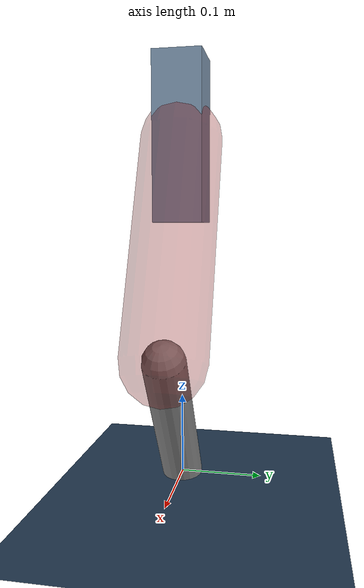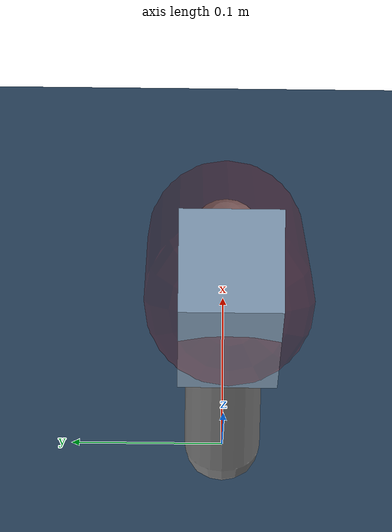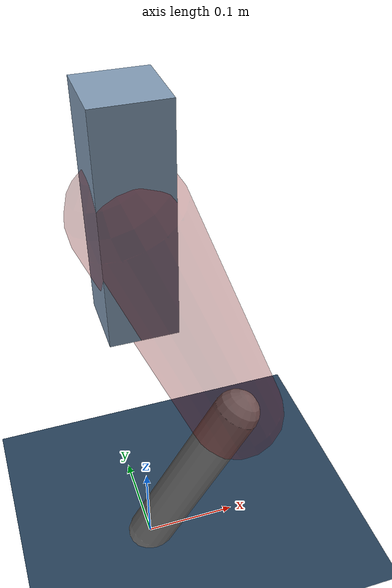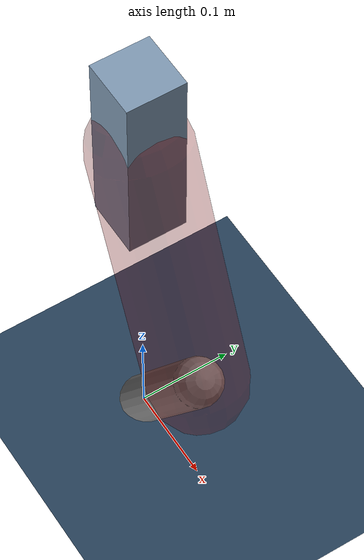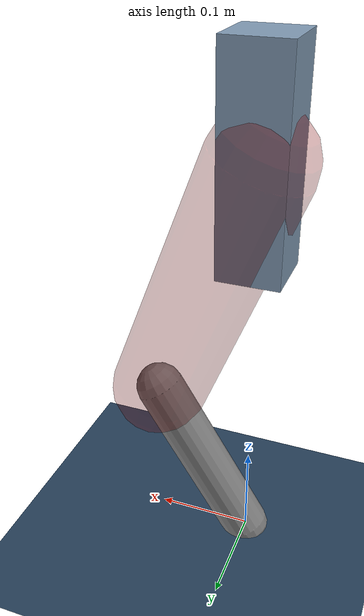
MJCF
<mujoco model="Hopper2D">
	<compiler inertiafromgeom="true" angle="radian" />
	<option timestep="0.001" integrator="implicit" cone="elliptic" solver="Newton" tolerance="1e-10" />

	<default>
		<geom contype="1" conaffinity="1" condim="3" friction="2 0.005 0.0001" solref="0.005 1" />
		<joint limited="true" damping="0.1" />
	</default>

	<asset>
		<texture name="skybox" type="skybox" builtin="gradient" rgb1=".4 .6 .8" rgb2="0 0 0" width="800" height="800" />
		<texture name="grid" type="2d" builtin="checker" rgb1=".1 .2 .3" rgb2=".2 .3 .4" width="300" height="300" mark="edge" markrgb=".2 .3 .4" />
		<material name="ground" texture="grid" texrepeat="1 1" texuniform="true" reflectance="0.1" />
		<material name="leg" rgba="0.5 0.6 0.7 1" />
	</asset>

	<worldbody>

		<geom name="floor" type="plane" size="5 5 0.25" material="ground" />

		<light directional="false" diffuse="0.8 0.8 0.8" specular="0.3 0.3 0.3" pos="0 0 2" dir="0 0 -1" />
		<light mode="targetbodycom" target="base" directional="false" diffuse="0.8 0.8 0.8" specular="0.3 0.3 0.3" pos="0 0 2" dir="0 0 -1" />

		<camera name="fixed" pos="0 -2 1" xyaxes="1 0 0 0 0 1" />
		<camera name="tracking" mode="trackcom" pos="0 -3 1" />

		<body name="root" pos="0 0 0.4197107775254405">
			<joint name="slide_x" type="slide" axis="1 0 0" range="-100 100" />
			<joint name="slide_z" type="slide" axis="0 0 1" range="0 10" />

			<body name="base" pos="0 0 0">
				<geom name="torso" type="box" size="0.03 0.03 0.1" mass="2.752" material="leg" />

				<body name="link1" pos="0 0 0" euler="0 1.1926556782048938 0">
					<joint type="hinge" axis="0 -1 0" pos="0 0 0" name="hinge1" limited="true" range="-3.14 3.14" stiffness="0" damping="0.1" />
					<geom name="thigh" type="capsule" fromto="0 0 0 0.2715440116563815 0 0" size="0.05" rgba="0.5 0 0 0.3" mass="0.9127144303065918" />

					<body name="link2" pos="0.2715440116563815 0 0" euler="0 0.917864812294289 0">
						<joint type="hinge" axis="0 -1 0" pos="0 0 0" name="hinge2" limited="true" range="-3.14 3.14" stiffness="0" damping="0.1" />
						<geom name="shank" type="capsule" fromto="0 0 0 0.19508133801714095 0 0" size="0.025" mass="0.39676507041371273" />

					</body>
				</body>
			</body>
		</body>
	</worldbody>

	<actuator>
		<motor name="torque1" joint="hinge1" ctrlrange="-66.51435467598434 66.51435467598434" ctrllimited="true" gear="1" />
		<motor name="torque2" joint="hinge2" ctrlrange="-39.57314036617849 39.57314036617849" ctrllimited="true" gear="1" />
	</actuator>
</mujoco>
